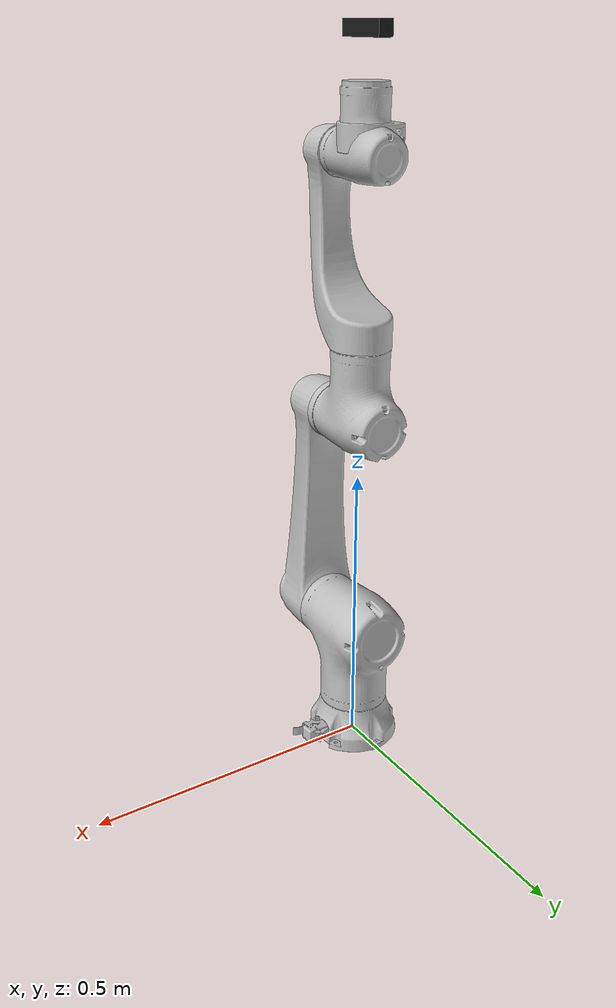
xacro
<?xml version="1.0"?>

<robot name="elfin5" xmlns:xacro="http://wiki.ros.org/xacro">

  <xacro:arg name="use_real_hardware" default="true" />
  <xacro:arg name="use_fake_hardware" default="false" />

  <!-- Load TRANSMISSION file: -->
  <xacro:include filename="$(find elfin5_ros2_gazebo)/urdf/elfin5_transmission.xacro" />
  <!-- Load GAZEBO/ROS2_CONTROL file: -->
  <xacro:include filename="$(find elfin5_ros2_gazebo)/urdf/elfin5_gazebo.xacro" />

  <xacro:property name="PI" value="3.1415926535897931"/>

  <xacro:property name="density" value="3.09"/>

    <!-- TRANSMISSION: -->
    <xacro:elfin5_transmission />
    <!-- GAZEBO - ROS2_CONTROL: -->
    <xacro:elfin5_gazebo
    use_real_hardware="$(arg use_real_hardware)"
    use_fake_hardware="$(arg use_fake_hardware)"/>

  <link name="world"/>

  <joint name="world_base" type="fixed">
    <origin
      xyz="0 0 0"
      rpy="0 0 0" />
    <parent
      link="world" />
    <child
      link="elfin_base_link" />
  </joint>

  <link name="elfin_base_link"/>

  <joint name="elfin_base_joint" type="fixed">
    <origin
      xyz="0 0 0"
      rpy="0 0 0" />
    <parent
      link="elfin_base_link" />
    <child
      link="elfin_base" />
  </joint>

   <link
    name="elfin_base">
    <inertial>
      <origin
        xyz="-0.000763828012447035 5.78534761012293E-06 0.0304416599943415"
        rpy="0 0 0" />
      <mass
        value="0.970239706050223" />
      <inertia
        ixx="0.00157696245666968"
        ixy="1.16231027909909E-07"
        ixz="-2.16838482265701E-05"
        iyy="0.00144565496079807"
        iyz="-6.75796232258151E-08"
        izz="0.00236570554301517" />
    </inertial>
    <visual>
      <origin
        xyz="0 0 0"
        rpy="0 0 0" />
      <geometry>
        <mesh
          filename="file://$(find elfin_description)/meshes/elfin5/elfin_base.STL" />
      </geometry>
      <material
        name="">
        <color
          rgba="0.752941176470588 0.752941176470588 0.752941176470588 1" />
      </material>
    </visual>
    <collision>
      <origin
        xyz="0 0 0"
        rpy="0 0 0" />
      <geometry>
        <mesh
          filename="file://$(find elfin_description)/meshes/elfin5/elfin_base.STL" />
      </geometry>
    </collision>
  </link>
  <link
    name="elfin_link1">
    <inertial>
      <origin
        xyz="2.74291280953301E-06 -0.00431106908088009 -0.0357493000420958"
        rpy="0 0 0" />
      <mass
        value="3.25128102774055" />
      <inertia
        ixx="0.0131139015939654"
        ixy="1.53830686193548E-07"
        ixz="4.14641049481189E-07"
        iyy="0.0123861178713592"
        iyz="0.00240614664669851"
        izz="0.00712273876232631" />
    </inertial>
    <visual>
      <origin
        xyz="0 0 0"
        rpy="0 0 0" />
      <geometry>
        <mesh
          filename="file://$(find elfin_description)/meshes/elfin5/elfin_link1.STL" />
      </geometry>
      <material
        name="">
        <color
          rgba="0.752941176470588 0.752941176470588 0.752941176470588 1" />
      </material>
    </visual>
    <collision>
      <origin
        xyz="0 0 0"
        rpy="0 0 0" />
      <geometry>
        <mesh
          filename="file://$(find elfin_description)/meshes/elfin5/elfin_link1.STL" />
      </geometry>
    </collision>
  </link>
  <joint
    name="elfin_joint1"
    type="revolute">
    <origin
      xyz="0 0 0.22"
      rpy="0 0 0" />
    <parent
      link="elfin_base" />
    <child
      link="elfin_link1" />
    <axis
      xyz="0 0 1" />
    <limit
      lower="-3.14"
      upper="3.14"
      effort="420"
      velocity="1.57" />
  </joint>
  <link
    name="elfin_link2">
    <inertial>
      <origin
        xyz="-4.61141935425826E-06 0.1591743105703 0.127676233728645"
        rpy="0 0 0" />
      <mass
        value="2.80251415493372" />
      <inertia
        ixx="0.0472004127058612"
        ixy="-3.78127975165949E-06"
        ixz="2.96484076164975E-07"
        iyy="0.00279445987467469"
        iyz="0.0015424585085081"
        izz="0.0478757132444163" />
    </inertial>
    <visual>
      <origin
        xyz="0 0 0"
        rpy="0 0 0" />
      <geometry>
        <mesh
          filename="file://$(find elfin_description)/meshes/elfin5/elfin_link2.STL" />
      </geometry>
      <material
        name="">
        <color
          rgba="0.752941176470588 0.752941176470588 0.752941176470588 1" />
      </material>
    </visual>
    <collision>
      <origin
        xyz="0 0 0"
        rpy="0 0 0" />
      <geometry>
        <mesh
          filename="file://$(find elfin_description)/meshes/elfin5/elfin_link2.STL" />
      </geometry>
    </collision>
  </link>
  <joint
    name="elfin_joint2"
    type="revolute">
    <origin
      xyz="0 0 0"
      rpy="1.5708 0 0" />
    <parent
      link="elfin_link1" />
    <child
      link="elfin_link2" />
    <axis
      xyz="0 0 1" />
    <limit
      lower="-2.35"
      upper="2.35"
      effort="420"
      velocity="1.57" />
  </joint>
  <link
    name="elfin_link3">
    <inertial>
      <origin
        xyz="0.0290082764878195 8.22344830496747E-06 -0.00396673307172194"
        rpy="0 0 0" />
      <mass
        value="1.985771603253" />
      <inertia
        ixx="0.00325219349943707"
        ixy="-2.70050556242264E-07"
        ixz="-0.00114506857457687"
        iyy="0.00594604197825752"
        iyz="7.00611683851371E-07"
        izz="0.00528005541994704" />
    </inertial>
    <visual>
      <origin
        xyz="0 0 0"
        rpy="0 0 0" />
      <geometry>
        <mesh
          filename="file://$(find elfin_description)/meshes/elfin5/elfin_link3.STL" />
      </geometry>
      <material
        name="">
        <color
          rgba="0.752941176470588 0.752941176470588 0.752941176470588 1" />
      </material>
    </visual>
    <collision>
      <origin
        xyz="0 0 0"
        rpy="0 0 0" />
      <geometry>
        <mesh
          filename="file://$(find elfin_description)/meshes/elfin5/elfin_link3.STL" />
      </geometry>
    </collision>
  </link>
  <joint
    name="elfin_joint3"
    type="revolute">
    <origin
      xyz="0 0.38 0"
      rpy="3.1416 0 1.5708" />
    <parent
      link="elfin_link2" />
    <child
      link="elfin_link3" />
    <axis
      xyz="0 0 1" />
    <limit
      lower="-2.61"
      upper="2.61"
      effort="200"
      velocity="1.57" />
  </joint>
  <link
    name="elfin_link4">
    <inertial>
      <origin
        xyz="-3.37325284266827E-05 -0.059246634833044 0.248712399920572"
        rpy="0 0 0" />
      <mass
        value="1.3966627675706" />
      <inertia
        ixx="0.0146417786566676"
        ixy="-1.72570245202171E-06"
        ixz="6.27583250069289E-06"
        iyy="0.0128389262643824"
        iyz="0.00385606704922265"
        izz="0.00311370666742545" />
    </inertial>
    <visual>
      <origin
        xyz="0 0 0"
        rpy="0 0 0" />
      <geometry>
        <mesh
          filename="file://$(find elfin_description)/meshes/elfin5/elfin_link4.STL" />
      </geometry>
      <material
        name="">
        <color
          rgba="0.752941176470588 0.752941176470588 0.752941176470588 1" />
      </material>
    </visual>
    <collision>
      <origin
        xyz="0 0 0"
        rpy="0 0 0" />
      <geometry>
        <mesh
          filename="file://$(find elfin_description)/meshes/elfin5/elfin_link4.STL" />
      </geometry>
    </collision>
  </link>
  <joint
    name="elfin_joint4"
    type="revolute">
    <origin
      xyz="0 0 0"
      rpy="1.5708 0 1.5708" />
    <parent
      link="elfin_link3" />
    <child
      link="elfin_link4" />
    <axis
      xyz="0 0 1" />
    <limit
      lower="-3.14"
      upper="3.14"
      effort="200"
      velocity="1.57" />
  </joint>
  <link
    name="elfin_link5">
    <inertial>
      <origin
        xyz="-1.05027528186624E-06 -0.0219935502961173 -0.00313939707023243"
        rpy="0 0 0" />
      <mass
        value="1.18717984150567" />
      <inertia
        ixx="0.00223607662459616"
        ixy="7.69598109537055E-08"
        ixz="1.87231135997621E-07"
        iyy="0.00135159849023817"
        iyz="0.000420977801546637"
        izz="0.00193236500760183" />
    </inertial>
    <visual>
      <origin
        xyz="0 0 0"
        rpy="0 0 0" />
      <geometry>
        <mesh
          filename="file://$(find elfin_description)/meshes/elfin5/elfin_link5.STL" />
      </geometry>
      <material
        name="">
        <color
          rgba="0.752941176470588 0.752941176470588 0.752941176470588 1" />
      </material>
    </visual>
    <collision>
      <origin
        xyz="0 0 0"
        rpy="0 0 0" />
      <geometry>
        <mesh
          filename="file://$(find elfin_description)/meshes/elfin5/elfin_link5.STL" />
      </geometry>
    </collision>
  </link>
  <joint
    name="elfin_joint5"
    type="revolute">
    <origin
      xyz="0 0 0.42"
      rpy="-1.5708 0 0" />
    <parent
      link="elfin_link4" />
    <child
      link="elfin_link5" />
    <axis
      xyz="0 0 1" />
    <limit
      lower="-2.56"
      upper="2.56"
      effort="69"
      velocity="1.57" />
  </joint>
  <link
    name="elfin_link6">
    <inertial>
      <origin
        xyz="-1.59841620089968E-05 -0.00034491847744483 0.128921909891105"
        rpy="0 0 0" />
      <mass
        value="0.281755133133711" />
      <inertia
        ixx="0.000141506869040406"
        ixy="-3.26513406770626E-08"
        ixz="7.38940963331507E-08"
        iyy="0.000144516478405932"
        iyz="-8.86072913302242E-08"
        izz="0.000252050888055838" />
    </inertial>
    <visual>
      <origin
        xyz="0 0 0"
        rpy="0 0 0" />
      <geometry>
        <mesh
          filename="file://$(find elfin_description)/meshes/elfin5/elfin_link6.STL" />
      </geometry>
      <material
        name="">
        <color
          rgba="0.752941176470588 0.752941176470588 0.752941176470588 1" />
      </material>
    </visual>
    <collision>
      <origin
        xyz="0 0 0"
        rpy="0 0 0" />
      <geometry>
        <mesh
          filename="file://$(find elfin_description)/meshes/elfin5/elfin_link6.STL" />
      </geometry>
    </collision>
  </link>
  <joint
    name="elfin_joint6"
    type="revolute">
    <origin
      xyz="0 0 0"
      rpy="1.5708 0 0" />
    <parent
      link="elfin_link5" />
    <child
      link="elfin_link6" />
    <axis
      xyz="0 0 1" />
    <limit
      lower="-3.14"
      upper="3.14"
      effort="69"
      velocity="1.57" />
  </joint>
  <link
    name="elfin_end_link"/>
  <joint
    name="elfin_end_joint"
    type="fixed">
    <origin
      xyz="0 0 0.1565"
      rpy="0 0 0" />
    <parent
      link="elfin_link6" />
    <child
      link="elfin_end_link" />
    <axis
      xyz="0 0 0" />
  </joint>

  <link name="elfin_dummy_gripper"/>

  <joint name="elfin_dummy_joint" type="fixed">
    <origin
      xyz="0 -0.0935 0"
      rpy="${PI/2} ${PI/2} 0" />
    <parent
      link="elfin_link6" />
    <child
      link="elfin_dummy_gripper" />
  </joint>

  <!-- ================= D435i 相机(眼在手上, cos_rsvisual 追加) ================= -->
  <!-- 眼在手上的手眼标定外参入口:
       真机做完手眼标定后, 改 launch 传入的 mount_xyz / mount_rpy 即可,
       不必改动本文件其余部分。默认值为相机装在 elfin_end_link 正上方 2cm。 -->
  <xacro:arg name="mount_xyz" default="0 0 0.02" />
  <xacro:arg name="mount_rpy" default="0 0 0" />

  <!-- 简化 D435i 模型: box 0.025(x) x 0.09(y) x 0.025(z), 质量 0.072kg。
       不依赖 realsense2_description, 仿真足够用。 -->
  <link name="camera_link">
    <inertial>
      <origin xyz="0 0 0" rpy="0 0 0" />
      <mass value="0.072" />
      <!-- 均匀长方体惯性: ixx=m/12*(y^2+z^2), iyy=m/12*(x^2+z^2), izz=m/12*(x^2+y^2) -->
      <inertia ixx="5.235e-05" ixy="0.0" ixz="0.0"
               iyy="7.5e-06" iyz="0.0" izz="5.235e-05" />
    </inertial>
    <visual>
      <origin xyz="0 0 0" rpy="0 0 0" />
      <geometry>
        <box size="0.025 0.09 0.025" />
      </geometry>
      <material name="">
        <color rgba="0.1 0.1 0.1 1" />
      </material>
    </visual>
    <collision>
      <origin xyz="0 0 0" rpy="0 0 0" />
      <geometry>
        <box size="0.025 0.09 0.025" />
      </geometry>
    </collision>
  </link>

  <!-- 相机固定安装到末端法兰 -->
  <joint name="camera_mount_joint" type="fixed">
    <origin xyz="$(arg mount_xyz)" rpy="$(arg mount_rpy)" />
    <parent link="elfin_end_link" />
    <child link="camera_link" />
  </joint>

  <!-- 以下光学帧与 gazebo 插件仅供仿真: 真机的 camera_depth_frame /
       camera_depth_optical_frame 等由 realsense 驱动发布(publish_tf),
       URDF 再定义会 TF 双发、值不同还会闪烁。 -->
  <xacro:unless value="$(arg use_real_hardware)">

  <!-- 深度帧(物理帧) -->
  <link name="camera_depth_frame"/>
  <joint name="camera_depth_joint" type="fixed">
    <origin xyz="0 0 0" rpy="0 0 0" />
    <parent link="camera_link" />
    <child link="camera_depth_frame" />
  </joint>

  <!-- 标准 optical 帧: z 轴朝镜头前方, x 右 y 下 -->
  <link name="camera_depth_optical_frame"/>
  <joint name="camera_depth_optical_joint" type="fixed">
    <origin xyz="0 0 0" rpy="-1.5708 0 -1.5708" />
    <parent link="camera_depth_frame" />
    <child link="camera_depth_optical_frame" />
  </joint>

  <gazebo reference="camera_depth_frame">
    <sensor name="camera_depth" type="depth">
      <always_on>true</always_on>
      <update_rate>15</update_rate>
      <visualize>false</visualize>
      <camera name="camera_depth_camera">
        <horizontal_fov>1.047</horizontal_fov>
        <image>
          <width>640</width>
          <height>480</height>
          <format>R8G8B8</format>
        </image>
        <clip>
          <near>0.3</near>
          <far>5.0</far>
        </clip>
      </camera>
      <plugin name="camera_depth_controller" filename="libgazebo_ros_camera.so">
        <ros>
          <namespace>/</namespace>
        </ros>
        <camera_name>camera</camera_name>
        <frame_name>camera_depth_optical_frame</frame_name>
        <min_depth>0.3</min_depth>
        <max_depth>5.0</max_depth>
        <pointCloudCutoff>0.3</pointCloudCutoff>
      </plugin>
    </sensor>
  </gazebo>

  </xacro:unless>

</robot>
